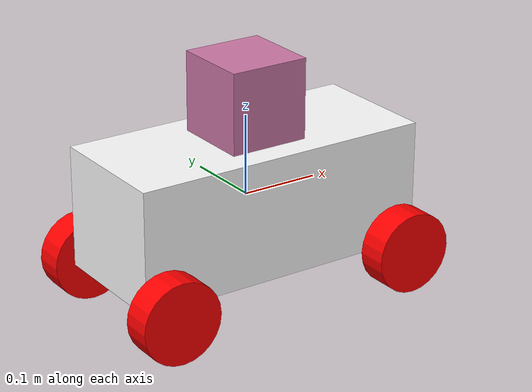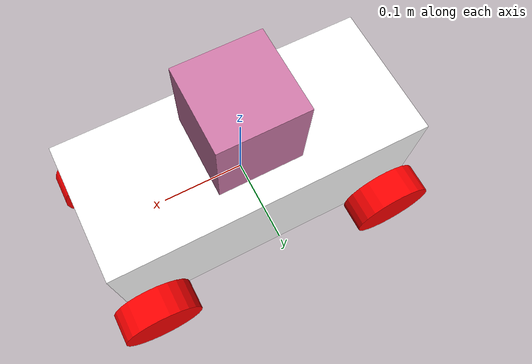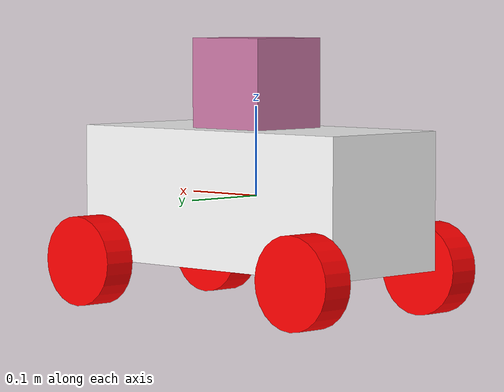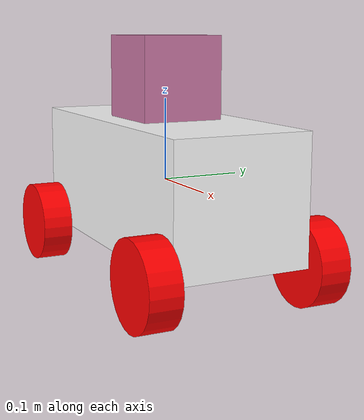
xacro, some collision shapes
<?xml version="1.0"?>

<robot xmlns:xacro="http://www.ros.org/wiki/xacro"  name="racecar">

    <!-- Inertial tensors for common shapes-->
    <xacro:include filename="$(find racecar_description)/urdf/inertial_macros.xacro"/>

    <!--Propoerties-->
    <xacro:property name="body_length" value="${15*2.54/100}"/>
    <xacro:property name="body_width" value="${6.5*2.54/100}"/>
    <xacro:property name="body_height" value="${6*2.54/100}"/>
    <xacro:property name="wheel_radius" value="${2*2.54/100}"/>
    <xacro:property name="wheel_long_offset" value="${1*2.54/100}" />
    <xacro:property name="wheel_width" value="${1.5*2.54/100}" />

    <!--Materials-->
    <material name="red">
        <color rgba="1 0 0 1" />
    </material>

    <material name="white">
        <color rgba="1 1 1 1" />
    </material>

    <!--Base footprint-->
    <link name="base_footprint"></link>

    <joint name="base_footprint__base_link" type="fixed">
        <origin xyz = "0 0 0"/>
        <parent link="base_footprint"/>
        <child link="base_link"/>
    </joint>

    <!-- Racecar body (base_link)-->
    <link name="base_link">
        <visual>
            <origin xyz="0 0 0" rpy="0 0 0"/>
            <geometry>
                <box size="${body_length} ${body_width} ${body_height}" />
            </geometry>
            <material name="white"/>
        </visual>

        <collision>
            <origin xyz="0 0 0" rpy="0 0 0"/>
            <geometry>
                <box size="${body_length} ${body_width} ${body_height}" />
            </geometry>
        </collision>

        <xacro:inertial_box mass="1.0" length="${body_length}" width="${body_width}" height="${body_height}">
            <origin xyz="0 0 0" rpy="0 0 1"/>
        </xacro:inertial_box>
    </link>

    <!-- Racecar wheels -->
    <xacro:macro name="wheel" params="prefix suffix reflect_long reflect_lat">

        <link name="${prefix}_${suffix}_wheel">
            <!--The origin defines where the center of the visual element should be relative to the actual origin (offset). It does not change the location of the origin-->
            <visual>
                <origin xyz="0 0 0" rpy="${pi/2} 0 0" />
                <geometry>
                    <cylinder radius="${wheel_radius}" length="${wheel_width}"/>
                </geometry>
                <material name="red"/>
            </visual>
            <collision>
                <origin xyz="0 0 0" rpy="${pi/2} 0 0" />
                <geometry>
                    <cylinder radius="${wheel_radius}" length="${wheel_width}"/>
                </geometry>
            </collision>
            <xacro:inertial_cylinder mass="1.0" length="${wheel_width}" radius="${wheel_radius}">
                <origin xyz="0 0 0" rpy="0 ${pi/2} 0"/>
            </xacro:inertial_cylinder>
        </link>

        <joint name="${prefix}_${suffix}_wheel_joint" type="continuous">
            <axis xyz="0 1 0" rpy="0 0 0" />
            <parent link="base_link"/>
            <child link="${prefix}_${suffix}_wheel"/>
            <origin xyz="${reflect_long * (body_length/2-(1*2.54/100))} ${reflect_lat * (body_width+wheel_width)/2} ${-1*body_height/2}" rpy="0 0 0"/>
        </joint>

        <!-- This block provides the simulator (Gazebo) with information on a few additional
        physical properties. See http://gazebosim.org/tutorials/?tut=ros_urdf for more-->
        <gazebo reference="${prefix}_${suffix}_wheel">
            <mu1 value="200.0"/>
            <mu2 value="100.0"/>
            <kp value="10000000.0" />
            <kd value="1.0" />
            <material>Gazebo/Red</material>
        </gazebo>

        <!-- This block connects the wheel joint to an actuator (motor), which informs both
        simulation and visualization of the robot -->
        <transmission name="${prefix}_${suffix}_wheel_trans">
            <type>transmission_interface/SimpleTransmission</type>
            <actuator name="${prefix}_${suffix}_wheel_motor">
                <hardwareInterface>hardware_interface/VelocityJointInterface</hardwareInterface>
                <mechanicalReduction>1</mechanicalReduction>
            </actuator>
            <joint name="${prefix}_${suffix}_wheel_joint">
                <hardwareInterface>hardware_interface/VelocityJointInterface</hardwareInterface>
            </joint>
        </transmission>

    </xacro:macro>

    <xacro:wheel prefix="front" suffix="left" reflect_long="1" reflect_lat="1"/>
    <xacro:wheel prefix="front" suffix="right" reflect_long="1" reflect_lat="-1"/>
    <xacro:wheel prefix="back" suffix="left" reflect_long="-1" reflect_lat="1"/>
    <xacro:wheel prefix="back" suffix="right" reflect_long="-1" reflect_lat="-1"/>

    <!-- Hokuyo Laser -->
    <link name="hokuyo_link">
        <collision>
            <origin xyz="0 0 0" rpy="0 0 0"/>
            <geometry>
                <box size="0.1 0.1 0.1"/>
            </geometry>
        </collision>

        <visual>
            <origin xyz="0 0 0" rpy="0 0 0"/>
            <geometry>
                <mesh filename="package://racecar_description/meshes/hokuyo.dae"/>
            </geometry>
        </visual>

        <inertial>
            <mass value="1e-5" />
            <origin xyz="0 0 0" rpy="0 0 0"/>
            <inertia ixx="1e-6" ixy="0" ixz="0" iyy="1e-6" iyz="0" izz="1e-6" />
        </inertial>
    </link>

    <joint name="hokuyo_joint" type="fixed">
        <axis xyz="0 1 0" />
        <origin xyz="0 0 ${body_height/2 + 0.05}" rpy="0 0 0"/>
        <parent link="base_link"/>
        <child link="hokuyo_link"/>
    </joint>

    <gazebo reference="hokuyo_link">
        <sensor type="gpu_ray" name="head_hokuyo_sensor">
            <pose>0 0 0 0 0 0</pose>
            <visualize>false</visualize>
            <update_rate>40</update_rate>
            <ray>
                <scan>
                    <horizontal>
                        <samples>720</samples>
                        <resolution>1</resolution>
                        <min_angle>-1.570796</min_angle>
                        <max_angle>1.570796</max_angle>
                    </horizontal>
                </scan>
                <range>
                    <min>0.10</min>
                    <max>30.0</max>
                    <resolution>0.01</resolution>
                </range>
                <noise>
                    <type>gaussian</type>
                    <mean>0.0</mean>
                    <stddev>0.01</stddev>
                </noise>
            </ray>
            <plugin name="gazebo_ros_head_hokuyo_controller" filename="libgazebo_ros_gpu_laser.so">
                <topicName>/scan</topicName>
                <frameName>hokuyo_link</frameName>
            </plugin>
        </sensor>
    </gazebo>

    <!--Gazebo ROS control-->
    <gazebo>
      <plugin name="gazebo_ros_control" filename="libgazebo_ros_control.so">
        <robotNamespace>/</robotNamespace>
      </plugin>
    </gazebo>

</robot>

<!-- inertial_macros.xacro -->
<robot xmlns:xacro="http://www.ros.org/wiki/xacro" >
    <xacro:macro name="inertial_box" params="mass length width height *origin">
        <inertial>
            <xacro:insert_block name="origin"/>
            <mass value="${mass}" />
            <inertia ixx="${(1/12) * mass * (width*width+height*height)}" ixy="0.0" ixz="0.0"
                    iyy="${(1/12) * mass * (length*length+height*height)}" iyz="0.0"
                    izz="${(1/12) * mass * (length*length+width*width)}" />
        </inertial>
    </xacro:macro>

    <xacro:macro name="inertial_cylinder" params="mass length radius *origin">
        <inertial>
            <xacro:insert_block name="origin"/>
            <mass value="${mass}" />
            <inertia ixx="${(1/12) * mass * (3*radius*radius + length*length)}" ixy="0.0" ixz="0.0"
                    iyy="${(1/12) * mass * (3*radius*radius + length*length)}" iyz="0.0"
                    izz="${(1/2) * mass * (radius*radius)}" />
        </inertial>
    </xacro:macro>

</robot>
